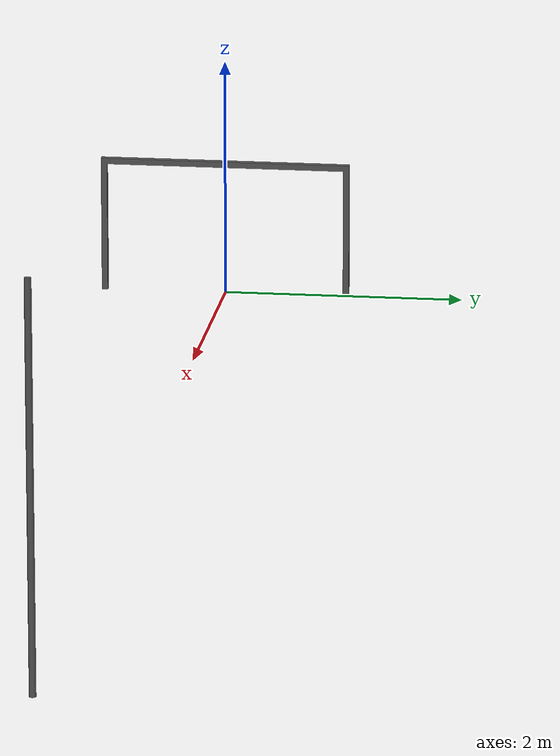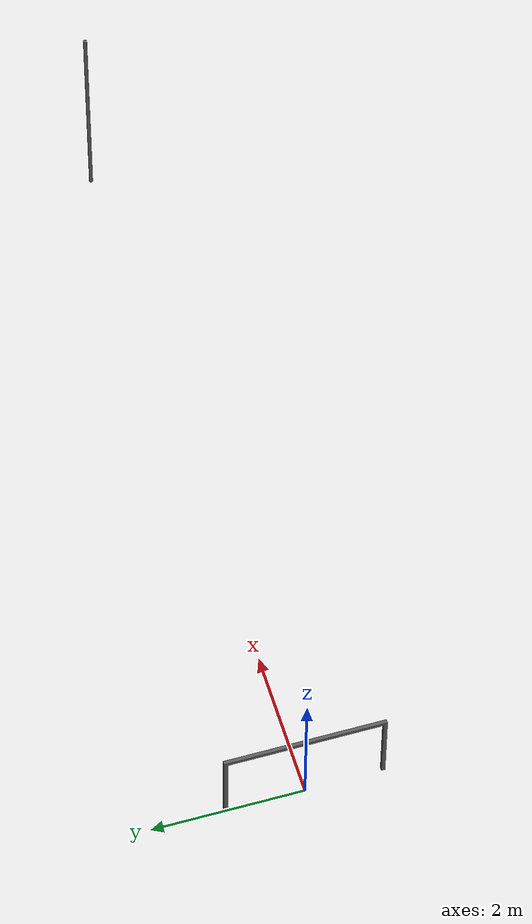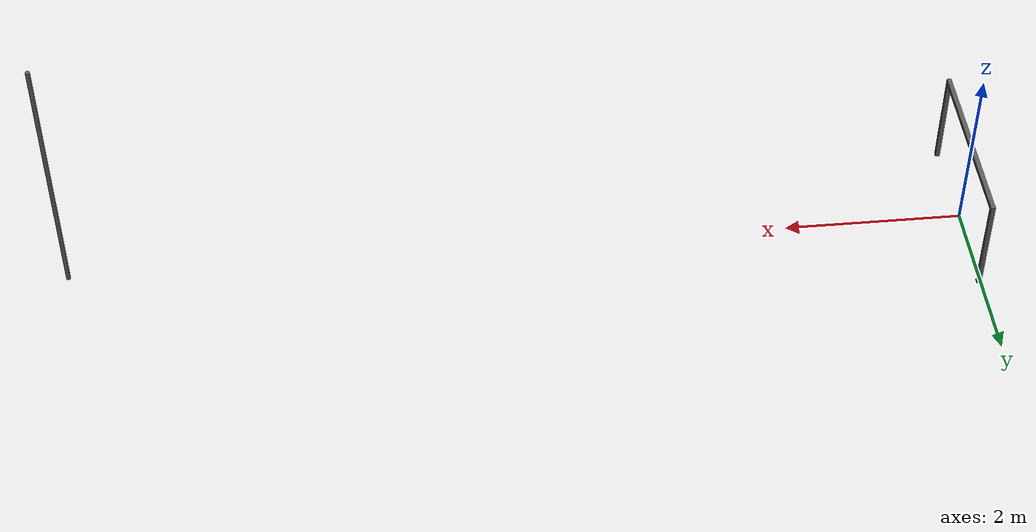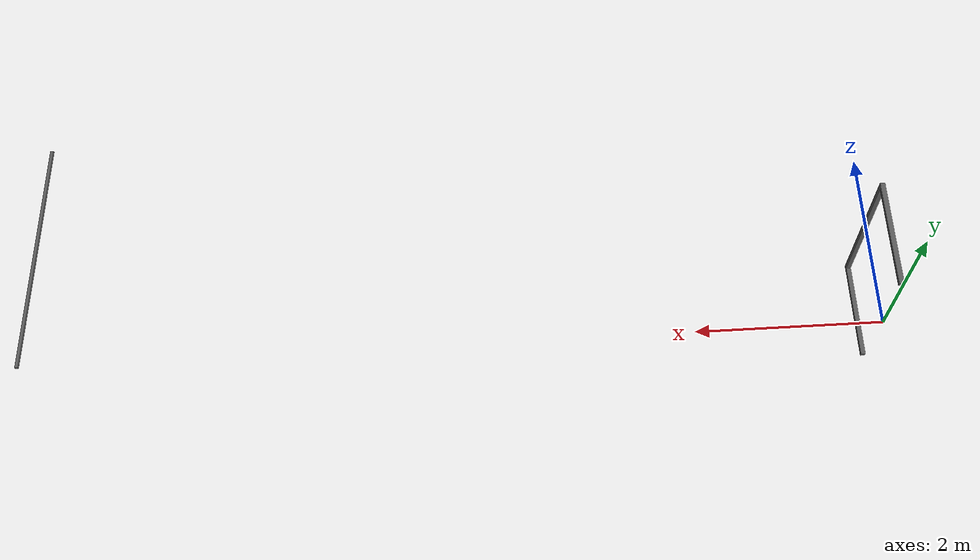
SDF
<?xml version="1.0"?>
<sdf version="1.11">
  <model name="robosub25_prequali_task">
    <static>1</static>

    <link name="prequali_task">
      <pose>0 0 0 0 0 0</pose>
      <visual name="gate">
        <pose>0 0 0 1.57 0 0</pose>
        <geometry>
          <mesh>
            <uri>model://robosub25/prequali_task/gate.dae</uri>
          </mesh>
        </geometry>
      </visual>
      <collision name="gate_collision">
        <pose>0 0 0 1.57 0 0</pose>
        <geometry>
          <mesh>
            <uri>model://robosub25/prequali_task/gate.dae</uri>
          </mesh>
        </geometry>
      </collision>

      <visual name="pillar">
        <pose>10 0 0 1.57 0 0</pose>
        <geometry>
          <mesh>
            <uri>model://robosub25/prequali_task/pillar.dae</uri>
          </mesh>
        </geometry>
      </visual>
      <collision name="pillar_collision">
        <pose>10 0 0 1.57 0 0</pose>
        <geometry>
          <mesh>
            <uri>model://robosub25/prequali_task/pillar.dae</uri>
          </mesh>
        </geometry>
      </collision>
    </link>
  </model>
</sdf>
